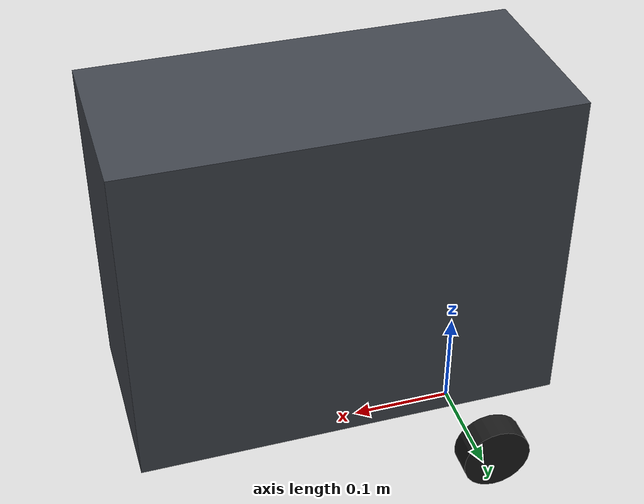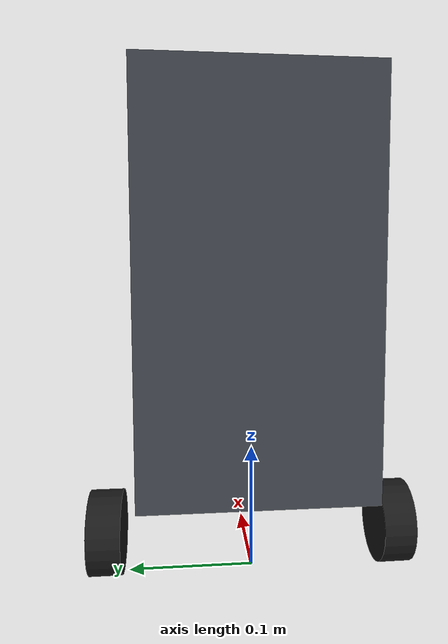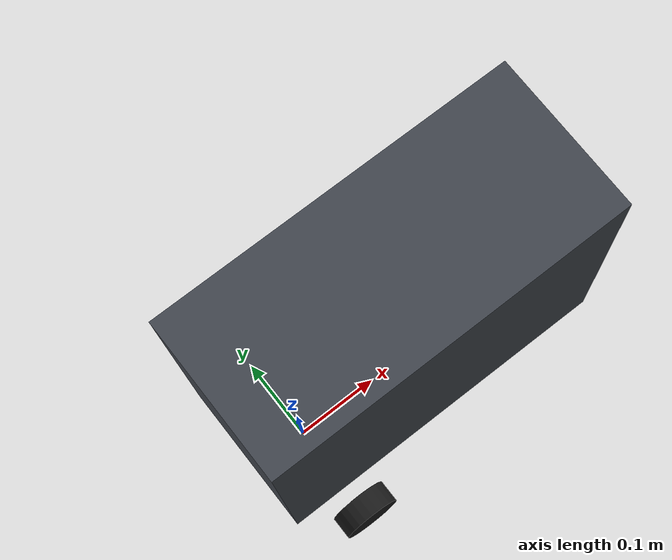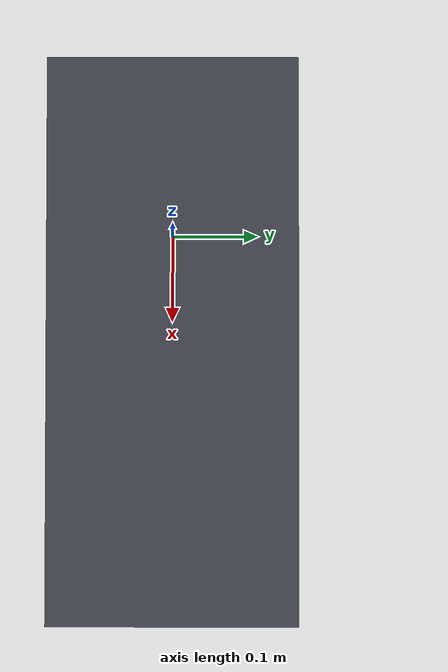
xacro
<?xml version="1.0"?>
<robot name="ship_ugv" xmlns:xacro="http://www.ros.org/wiki/xacro">

  <!-- ================= 실측 확정값 ================= -->
  <!-- URDF 시각화/충돌체 전용 기하학적 실측값 (wheel_odom_node 파라미터와는 별개, 위 NOTE 참고) -->
  <xacro:property name="track_width" value="0.2345"/>   <!-- 실측(캘리퍼, 축중심간격 평균) -->
  <xacro:property name="wheel_radius" value="0.0335"/>    <!-- 실측(캘리퍼, 지름 6.7cm/2), m -->

  <!-- 출처: base_link_to_imu_tf / base_link_to_laser_tf (localization.launch.py) -->
  <xacro:property name="imu_offset_xyz" value="0 0 0.055"/>
  <xacro:property name="laser_offset_xyz" value="0.195 0 0.2"/>
  <xacro:property name="laser_offset_rpy" value="3.14159 0 0"/>  <!-- 180도 뒤집혀 장착 -->

  <!-- ================= 실측(캘리퍼) 확정값 ================= -->
  <!-- chassis_length: 처음부터 전선 돌출부까지 포함해 측정한 유효 길이(2026-08-05
       재측정으로 정밀화). 전선이 억세서 걸리면 회전이 막히는 수준이라 자율주행
       충돌회피 관점에서 "실질적 차체 길이"로 취급. -->
  <xacro:property name="chassis_length" value="0.401"/>   <!-- 실측(전선 돌출부 포함 유효 길이) -->
  <xacro:property name="chassis_width" value="0.178"/>   <!-- 실측: 차체 좌우 폭 -->
  <xacro:property name="chassis_height" value="0.316"/>  <!-- 실측: 프레임 최하단~최상단 -->
  <xacro:property name="chassis_z_center" value="0.233"/> <!-- 실측: 지상고 0.075 + 높이/2 0.158 -->

  <!-- 뒷바퀴 축(base_link 원점)은 차체 길이 중앙이 아니라 뒤쪽으로 치우쳐 있음 -->
  <xacro:property name="wheel_axle_to_rear_face" value="0.069"/> <!-- 실측(전선 포함 유효 프레임 기준, 2026-08-05): 뒷바퀴 축 중심~프레임 최후단면 -->
  <xacro:property name="chassis_offset_x" value="${chassis_length/2.0 - wheel_axle_to_rear_face}"/>
    <!-- base_link(바퀴축) 기준 차체 중심 x. 후단면(-wheel_axle_to_rear_face)에서 chassis_length/2 만큼 앞 -->

  <!-- 아령으로 대략 잰 추정치 (정밀 저울 아님) -->
  <xacro:property name="chassis_mass" value="3.5"/>  <!-- 실측(추정), kg -->
  <xacro:property name="wheel_mass" value="0.036"/>   <!-- 실측(모터 제외 휠만), kg -->
  <xacro:property name="wheel_width" value="0.02635"/> <!-- 실측(캘리퍼), m -->

  <!-- 캐스터휠(전방 비구동 지지휠) 실측(캘리퍼, 2026-08-05) -->
  <!-- 시뮬 단순화: 실제 스위블+포크 구조 대신 저마찰 구(sphere)로 근사(표준 관행).
       그래서 스위블 조인트 자체 높이(4.3cm=7.8-3.5)나 육각 샤프트 길이(3.5cm)는
       URDF에는 반영하지 않고, 구가 지면(z=0)에 접하도록 반지름만큼만 띄운다. -->
  <xacro:property name="caster_radius" value="0.0125"/> <!-- 실측(캘리퍼, 지름 2.5cm/2), m -->
  <xacro:property name="caster_axle_to_front_face" value="0.084"/> <!-- 실측(전선 포함 유효 프레임 기준, 2026-08-05): 캐스터 스위블 중심~프레임 최전단면 -->
  <xacro:property name="caster_offset_x" value="${chassis_offset_x + chassis_length/2.0 - caster_axle_to_front_face}"/>
    <!-- base_link 기준 차체 앞면(chassis_offset_x + chassis_length/2)에서
         캐스터 스위블(z축 회전조인트) 중심까지 실측 -->
  <!-- y=0: 차체 좌우 끝에서 스위블 중심까지 양쪽 다 8.6cm로 동일 실측(중심선 정렬 확인) -->

  <!-- 센서 링크는 물리적으로 무시 가능한 수준이지만, 0으로 두면 일부
       물리엔진이 경고/불안정을 일으켜 아주 작은 값을 넣는다 -->
  <xacro:property name="sensor_mass" value="0.05"/>

  <!-- ================= 공용 관성 매크로 ================= -->
  <xacro:macro name="box_inertial" params="mass x y z">
    <inertial>
      <mass value="${mass}"/>
      <inertia
        ixx="${mass/12.0*(y*y+z*z)}" ixy="0" ixz="0"
        iyy="${mass/12.0*(x*x+z*z)}" iyz="0"
        izz="${mass/12.0*(x*x+y*y)}"/>
    </inertial>
  </xacro:macro>

  <xacro:macro name="cylinder_inertial" params="mass r h">
    <inertial>
      <mass value="${mass}"/>
      <inertia
        ixx="${mass/12.0*(3*r*r+h*h)}" ixy="0" ixz="0"
        iyy="${mass/12.0*(3*r*r+h*h)}" iyz="0"
        izz="${mass/2.0*r*r}"/>
    </inertial>
  </xacro:macro>

  <xacro:macro name="sphere_inertial" params="mass r">
    <inertial>
      <mass value="${mass}"/>
      <inertia
        ixx="${2.0/5.0*mass*r*r}" ixy="0" ixz="0"
        iyy="${2.0/5.0*mass*r*r}" iyz="0"
        izz="${2.0/5.0*mass*r*r}"/>
    </inertial>
  </xacro:macro>

  <material name="chassis_grey">
    <color rgba="0.25 0.27 0.30 1.0"/>
  </material>
  <material name="wheel_black">
    <color rgba="0.10 0.10 0.10 1.0"/>
  </material>
  <material name="caster_silver">
    <color rgba="0.70 0.70 0.72 1.0"/>
  </material>
  <material name="laser_red">
    <color rgba="0.85 0.15 0.15 1.0"/>
  </material>

  <!-- ================= base_link ================= -->
  <!-- 물리적 실체 없는 기준 프레임. 실제 차체는 chassis_link로 분리
       (base_link를 바퀴축 중점/지면 기준으로 유지하기 위함) -->
  <link name="base_link"/>

  <!-- ================= 차체(섀시) ================= -->
  <joint name="base_link_to_chassis" type="fixed">
    <parent link="base_link"/>
    <child link="chassis_link"/>
    <origin xyz="${chassis_offset_x} 0 ${chassis_z_center}" rpy="0 0 0"/>
  </joint>

  <link name="chassis_link">
    <visual>
      <geometry>
        <box size="${chassis_length} ${chassis_width} ${chassis_height}"/>
      </geometry>
      <material name="chassis_grey"/>
    </visual>
    <collision>
      <geometry>
        <box size="${chassis_length} ${chassis_width} ${chassis_height}"/>
      </geometry>
    </collision>
    <xacro:box_inertial mass="${chassis_mass}" x="${chassis_length}" y="${chassis_width}" z="${chassis_height}"/>
  </link>

  <!-- ================= 바퀴 (좌/우 공용 매크로) ================= -->
  <xacro:macro name="wheel" params="prefix reflect">
    <joint name="base_link_to_${prefix}_wheel" type="continuous">
      <parent link="base_link"/>
      <child link="${prefix}_wheel_link"/>
      <origin xyz="0 ${reflect * track_width / 2.0} ${wheel_radius}" rpy="-1.5708 0 0"/>
      <axis xyz="0 0 1"/>
    </joint>

    <link name="${prefix}_wheel_link">
      <visual>
        <geometry>
          <cylinder radius="${wheel_radius}" length="${wheel_width}"/>
        </geometry>
        <material name="wheel_black"/>
      </visual>
      <collision>
        <geometry>
          <cylinder radius="${wheel_radius}" length="${wheel_width}"/>
        </geometry>
      </collision>
      <xacro:cylinder_inertial mass="${wheel_mass}" r="${wheel_radius}" h="${wheel_width}"/>
    </link>
  </xacro:macro>

  <xacro:wheel prefix="left" reflect="1"/>
  <xacro:wheel prefix="right" reflect="-1"/>

  <!-- ================= 캐스터휠 (전방 지지, 비구동) ================= -->
  <!-- fixed 조인트 + 구(sphere)로 근사(조향 조인트 없이도 모든 방향 회전 가능해
       캐스터 거동 흉내). 마찰 계수 등 Gazebo 전용 튜닝은 별도 xacro에서 처리 예정. -->
  <joint name="base_link_to_caster" type="fixed">
    <parent link="base_link"/>
    <child link="caster_link"/>
    <origin xyz="${caster_offset_x} 0 ${caster_radius}" rpy="0 0 0"/>
  </joint>

  <link name="caster_link">
    <visual>
      <geometry>
        <sphere radius="${caster_radius}"/>
      </geometry>
      <material name="caster_silver"/>
    </visual>
    <collision>
      <geometry>
        <sphere radius="${caster_radius}"/>
      </geometry>
    </collision>
    <xacro:sphere_inertial mass="${sensor_mass}" r="${caster_radius}"/>
  </link>

  <!-- ================= IMU ================= -->
  <!-- 실측(2026-07-29): base_link 원점 기준 상방 0.055m, x/y 중앙 -->
  <joint name="base_link_to_imu" type="fixed">
    <parent link="base_link"/>
    <child link="imu"/>
    <origin xyz="${imu_offset_xyz}" rpy="0 0 0"/>
  </joint>

  <link name="imu">
    <xacro:box_inertial mass="${sensor_mass}" x="0.02" y="0.02" z="0.01"/>
  </link>

  <!-- ================= LiDAR ================= -->
  <!-- 실측(2026-07-29): base_link 원점(바퀴축 중점,지면) 기준
       전방 0.195m, 상방 0.2m, 180도 뒤집혀 장착(roll=pi) -->
  <joint name="base_link_to_laser" type="fixed">
    <parent link="base_link"/>
    <child link="laser"/>
    <origin xyz="${laser_offset_xyz}" rpy="${laser_offset_rpy}"/>
  </joint>

  <link name="laser">
    <visual>
      <geometry>
        <cylinder radius="0.03" length="0.04"/>
      </geometry>
      <material name="laser_red"/>
    </visual>
    <xacro:cylinder_inertial mass="${sensor_mass}" r="0.03" h="0.04"/>
  </link>

</robot>
